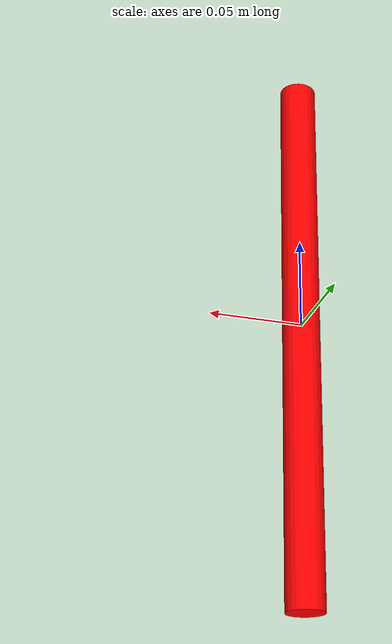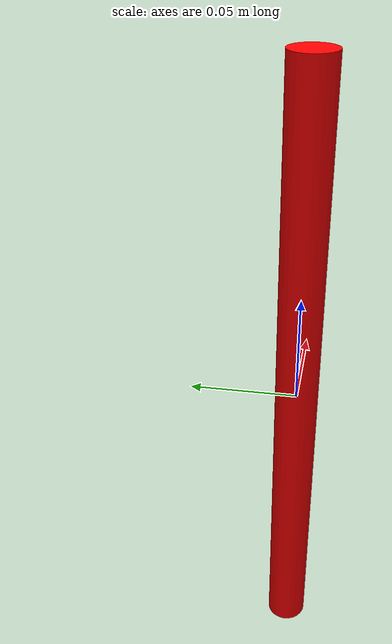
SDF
<sdf version="1.6">
  <model name="thrust_arrow">
    <static>true</static>
    <link name="link">
      <gravity>false</gravity>
      <visual name="arrow_visual">
        <geometry>
          <cylinder>
            <radius>0.01</radius>
            <length>0.3</length>
          </cylinder>
        </geometry>
        <material>
          <ambient>1 0 0 1</ambient>
          <diffuse>1 0 0 1</diffuse>
        </material>
      </visual>
    </link>

    <plugin
      filename="gz-sim-pose-publisher-system"
      name="gz::sim::systems::PosePublisher">
      <publish_link_pose>true</publish_link_pose>
    </plugin>
  </model>
</sdf>
